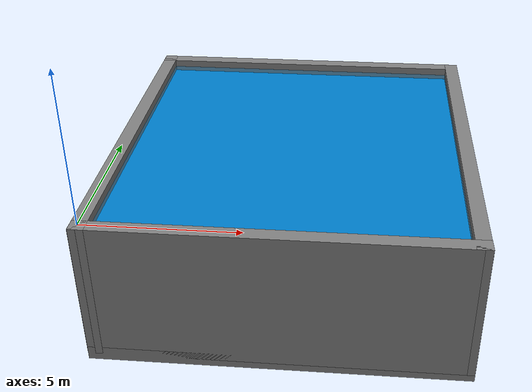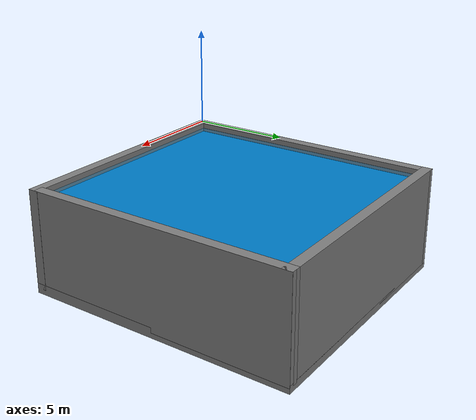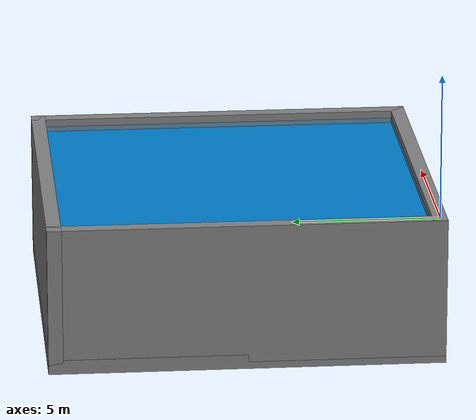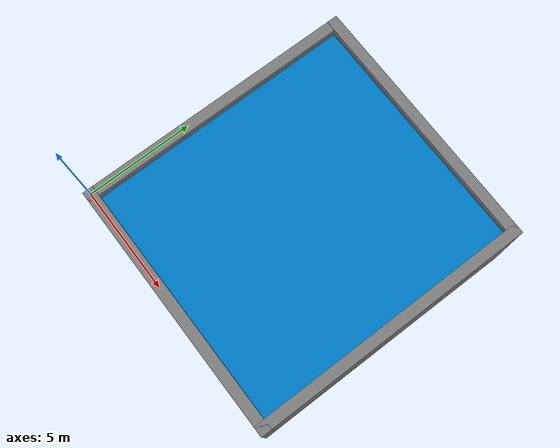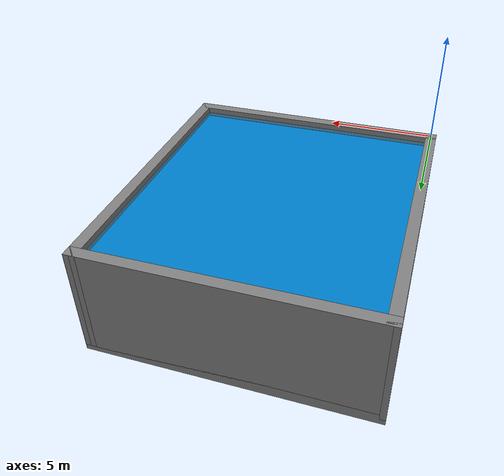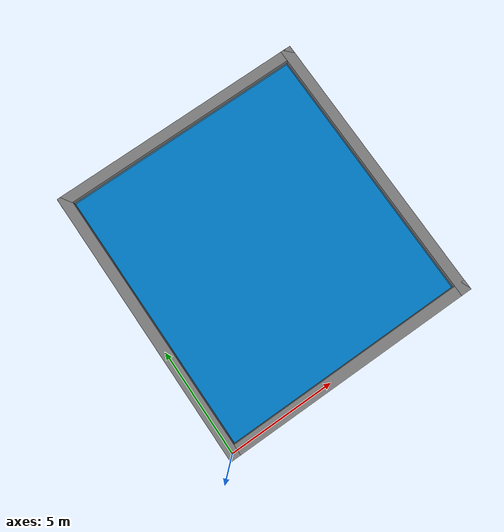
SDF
<?xml version="1.0" ?>
<sdf version="1.8">
  <world name="default">

    <gui>
      <camera name="user_camera">
        <pose>-5 6.5 13 0 0.9 0</pose>
      </camera>
    </gui>
    <physics name="1ms" type="ignored">
        <max_step_size>0.001</max_step_size>
        <real_time_factor>1.0</real_time_factor>
    </physics>

    <plugin
        filename="libignition-gazebo-physics-system"
        name="ignition::gazebo::systems::Physics">
    </plugin>
    <plugin
        filename="libignition-gazebo-user-commands-system"
        name="ignition::gazebo::systems::UserCommands">
    </plugin>
    <plugin
        filename="libignition-gazebo-scene-broadcaster-system"
        name="ignition::gazebo::systems::SceneBroadcaster">
    </plugin>

     <light type="directional" name="light_1" cast_shadows="true">

        <pose>0 0 5 0 0 0</pose>
        <diffuse>0.5 0.5 0.5 1</diffuse>
        <specular>.1 .1 .1 1</specular>
        <attenuation>
            <range>1000</range>
            <constant>0.9</constant>
            <linear>0.01</linear>
            <quadratic>0.001</quadratic>
        </attenuation>
        <direction>-0.5 0.1 -0.9</direction>
      </light>

    <model name="nimitz_wall">
      <pose>6 0 -2.44 0 0 0</pose>
      <static>true</static>
      <link name="base_link">
      <collision name="nimitz_wall_col">
         <geometry>
           <box>
             <size>12.5 0.5 4.87</size>
           </box>
         </geometry>
       </collision>
       <visual name="nimitz_wall_visual">
         <material>
           <ambient>0.5 0.5 0.5 1.0</ambient>
           <diffuse>0.5 0.5 0.5 1.0</diffuse>
           <specular>0.5 0.5 0.5 1.0</specular>
         </material>         <geometry>
           <box>
             <size>12.5 0.5 4.87</size>
           </box>
         </geometry>
       </visual>
       </link>
    </model>

    <model name="creek_wall">
      <pose>0 6.5 -2.44 0 0 1.57 </pose>
      <static>true</static>
      <link name="base_link">
      <collision name="creek_wall_col">
         <geometry>
           <box>
             <size>13.5 0.5 4.87</size>
           </box>
         </geometry>
       </collision>
       <visual name="creek_wall_visual">
         <material>
           <ambient>0.5 0.5 0.5 1.0</ambient>
           <diffuse>0.5 0.5 0.5 1.0</diffuse>
           <specular>0.5 0.5 0.5 1.0</specular>
         </material>         <geometry>
           <box>
             <size>13.5 0.5 4.87</size>
           </box>
         </geometry>
       </visual>
       </link>
    </model>

    <model name="hall_wall">
      <pose>12 6.5 -2.44 0 0 1.57</pose>
      <static>true</static>
      <link name="base_link">
      <collision name="hall_wall_col">
         <geometry>
           <box>
             <size>13.5 0.5 4.87</size>
           </box>
         </geometry>
       </collision>
       <visual name="hall_wall_visual">
         <material>
           <ambient>0.5 0.5 0.5 1.0</ambient>
           <diffuse>0.5 0.5 0.5 1.0</diffuse>
           <specular>0.5 0.5 0.5 1.0</specular>
         </material>         <geometry>
           <box>
             <size>13.5 0.5 4.87</size>
           </box>
         </geometry>
       </visual>
       </link>
    </model>
    <model name="naoe_wall">
      <pose>6 13 -2.44 0 0 0</pose>
      <static>true</static>
      <link name="base_link">
      <collision name="naoe_wall_col">
         <geometry>
           <box>
             <size>12.5 0.5 4.87</size>
           </box>
         </geometry>
       </collision>
       <visual name="naoe_wall_visual">
         <material>
           <ambient>0.5 0.5 0.5 1.0</ambient>
           <diffuse>0.5 0.5 0.5 1.0</diffuse>
           <specular>0.5 0.5 0.5 1.0</specular>
         </material>
         <geometry>
           <box>
             <size>12.5 0.5 4.87</size>
           </box>
         </geometry>
       </visual>
       </link>
    </model>
    <model name="pool_bottom">
      <pose>6 6.5 -4.87 0 0 0</pose>
      <static>true</static>
      <link name="base_link">
      <collision name="pool_bottom_col">
         <geometry>
           <box>
             <size>12.5 13.5 0.5</size>
           </box>
         </geometry>
       </collision>
       <visual name="pool_bottom_visual">
         <material>
           <ambient>0.5 0.5 0.5 1.0</ambient>
           <diffuse>0.5 0.5 0.5 1.0</diffuse>
           <specular>0.5 0.5 0.5 1.0</specular>
         </material>
         <geometry>
           <box>
             <size>12.5 13.5 0.5</size>
           </box>
         </geometry>
       </visual>
       </link>
    </model>

    <model name="water_plane">
      <pose>6 6.5 -0.25 0 0 0</pose>
      <static>true</static>
      <link name="link">
       <visual name="water_plane">
         <material>
           <ambient>0 0.5 0.8 0.9</ambient>
           <diffuse>0 0.5 0.8 0.9</diffuse>
           <specular>0 0.5 0.8 0.9</specular>
         </material>
         <geometry>
           <plane>
             <normal>0 0 1</normal>
             <size>12 13</size>
           </plane>
         </geometry>
       </visual>
       </link>
    </model>
    <model name="water_box">
      <pose>6 6.5 -2.44 0 0 0</pose>
      <static>true</static>
      <link name="link">
       <visual name="water_box">
         <material>
           <ambient>0 0.5 0.8 0.9</ambient>
           <diffuse>0 0.5 0.8 0.9</diffuse>
           <specular>0 0.5 0.8 0.9</specular>
         </material>
         <geometry>
           <box>
             <size>12 13 4</size>
           </box>
         </geometry>
       </visual>
       </link>
    </model>

  </world>
</sdf>
